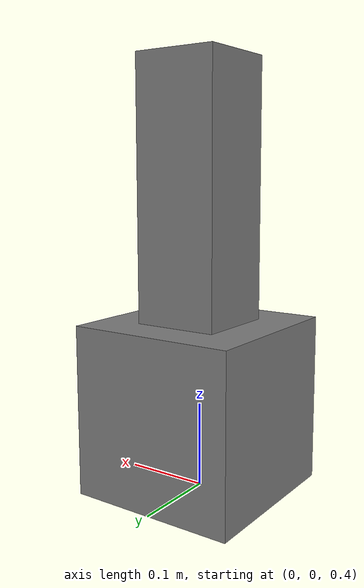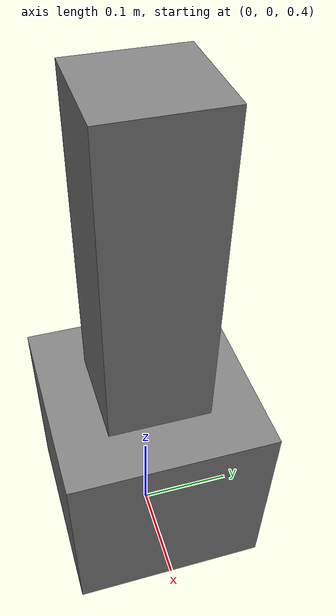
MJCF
<?xml version="1.0"?>
<mujoco model="fixture_bot">
  <compiler angle="radian"/>
  <worldbody>
    <body name="base" pos="0 0 0.5">
      <freejoint/>
      <geom name="base_collision" type="box" size="0.1 0.1 0.1" mass="1"/>
      <body name="link" pos="0 0 0.1">
        <joint name="joint" type="hinge" axis="0 1 0" range="-1 1"/>
        <geom name="link_collision" type="box" pos="0 0 0.15" size="0.05 0.05 0.15" mass="0.5"/>
      </body>
    </body>
  </worldbody>
</mujoco>
